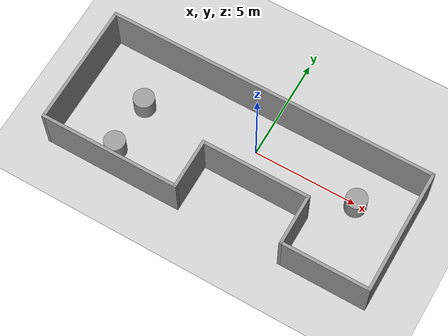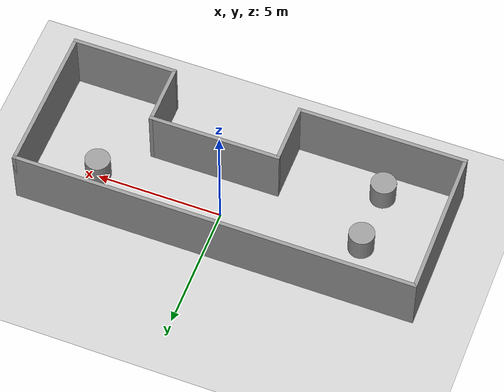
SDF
<sdf version="1.6">
 <world name="default">
  <light name="sun" type="directional">
   <pose>0 0 10 0 -0 0</pose>
   <diffuse>0.8 0.8 0.8 1</diffuse>
   <specular>0.1 0.1 0.1 1</specular>
   <attenuation>
    <range>1000</range>
    <constant>0.9</constant>
    <linear>0.01</linear>
    <quadratic>0.001</quadratic>
   </attenuation>
   <direction>-0.5 0.5 -1</direction>
  </light>
  <model name="ground_plane">
   <static>1</static>
   <link name="link">
    <collision name="collision">
     <geometry><plane><normal>0 0 1</normal><size>100 100</size></plane></geometry>
     <surface><friction><ode><mu>100</mu><mu2>50</mu2></ode></friction></surface>
    </collision>
    <visual name="visual">
     <cast_shadows>0</cast_shadows>
     <geometry><plane><normal>0 0 1</normal><size>100 100</size></plane></geometry>
     <material>
      <script><uri>file://media/materials/scripts/gazebo.material</uri><name>Gazebo/Grey</name></script>
     </material>
    </visual>
   </link>
  </model>
  <gravity>0 0 -9.8</gravity>
  <magnetic_field>6e-06 2.3e-05 -4.2e-05</magnetic_field>
  <atmosphere type="adiabatic"/>
  <physics name="default_physics" default="0" type="ode">
   <max_step_size>0.001</max_step_size>
   <real_time_factor>1</real_time_factor>
   <real_time_update_rate>1000</real_time_update_rate>
  </physics>
  <scene><ambient>0.4 0.4 0.4 1</ambient><background>0.7 0.7 0.7 1</background><shadows>1</shadows></scene>
  <spherical_coordinates>
   <surface_model>EARTH_WGS84</surface_model>
   <latitude_deg>0</latitude_deg>
   <longitude_deg>0</longitude_deg>
   <elevation>0</elevation>
   <heading_deg>0</heading_deg>
  </spherical_coordinates>
  <model name="test_world">
   <pose>-0.375142 -1.09239 0 0 -0 0</pose>
   <link name="Wall_11">
    <collision name="Wall_11_Collision">
     <geometry><box><size>6 0.15 2.5</size></box></geometry>
     <pose>0 0 1.25 0 -0 0</pose>
    </collision>
    <visual name="Wall_11_Visual">
     <pose>0 0 1.25 0 -0 0</pose>
     <geometry><box><size>6 0.15 2.5</size></box></geometry>
     <material>
      <script><uri>file://media/materials/scripts/gazebo.material</uri><name>Gazebo/Grey</name></script>
      <ambient>1 1 1 1</ambient>
     </material>
    </visual>
    <pose>7.9 0 0 0 0 -1.5708</pose>
   </link>
   <link name="Wall_12">
    <collision name="Wall_12_Collision">
     <geometry><box><size>4.25 0.15 2.5</size></box></geometry>
     <pose>0 0 1.25 0 -0 0</pose>
    </collision>
    <visual name="Wall_12_Visual">
     <pose>0 0 1.25 0 -0 0</pose>
     <geometry><box><size>4.25 0.15 2.5</size></box></geometry>
     <material>
      <script><uri>file://media/materials/scripts/gazebo.material</uri><name>Gazebo/Grey</name></script>
      <ambient>1 1 1 1</ambient>
     </material>
    </visual>
    <pose>5.85 -2.925 0 0 -0 3.14159</pose>
   </link>
   <link name="Wall_13">
    <collision name="Wall_13_Collision">
     <geometry><box><size>2.5 0.15 2.5</size></box></geometry>
     <pose>0 0 1.25 0 -0 0</pose>
    </collision>
    <visual name="Wall_13_Visual">
     <pose>0 0 1.25 0 -0 0</pose>
     <geometry><box><size>2.5 0.15 2.5</size></box></geometry>
     <material>
      <script><uri>file://media/materials/scripts/gazebo.material</uri><name>Gazebo/Grey</name></script>
      <ambient>1 1 1 1</ambient>
     </material>
    </visual>
    <pose>3.8 -1.75 0 0 -0 1.5708</pose>
   </link>
   <link name="Wall_14">
    <collision name="Wall_14_Collision">
     <geometry><box><size>5.25 0.15 2.5</size></box></geometry>
     <pose>0 0 1.25 0 -0 0</pose>
    </collision>
    <visual name="Wall_14_Visual">
     <pose>0 0 1.25 0 -0 0</pose>
     <geometry><box><size>5.25 0.15 2.5</size></box></geometry>
     <material>
      <script><uri>file://media/materials/scripts/gazebo.material</uri><name>Gazebo/Grey</name></script>
      <ambient>1 1 1 1</ambient>
     </material>
    </visual>
    <pose>1.25 -0.575 0 0 -0 3.14159</pose>
   </link>
   <link name="Wall_15">
    <collision name="Wall_15_Collision">
     <geometry><box><size>2.5 0.15 2.5</size></box></geometry>
     <pose>0 0 1.25 0 -0 0</pose>
    </collision>
    <visual name="Wall_15_Visual">
     <pose>0 0 1.25 0 -0 0</pose>
     <geometry><box><size>2.5 0.15 2.5</size></box></geometry>
     <material>
      <script><uri>file://media/materials/scripts/gazebo.material</uri><name>Gazebo/Grey</name></script>
      <ambient>1 1 1 1</ambient>
     </material>
    </visual>
    <pose>-1.3 -1.75 0 0 0 -1.5708</pose>
   </link>
   <link name="Wall_16">
    <collision name="Wall_16_Collision">
     <geometry><box><size>6.75 0.15 2.5</size></box></geometry>
     <pose>0 0 1.25 0 -0 0</pose>
    </collision>
    <visual name="Wall_16_Visual">
     <pose>0 0 1.25 0 -0 0</pose>
     <geometry><box><size>6.75 0.15 2.5</size></box></geometry>
     <material>
      <script><uri>file://media/materials/scripts/gazebo.material</uri><name>Gazebo/Grey</name></script>
      <ambient>1 1 1 1</ambient>
     </material>
    </visual>
    <pose>-4.6 -2.925 0 0 -0 3.14159</pose>
   </link>
   <link name="Wall_20">
    <collision name="Wall_20_Collision">
     <geometry><box><size>6 0.15 2.5</size></box></geometry>
     <pose>0 0 1.25 0 -0 0</pose>
    </collision>
    <visual name="Wall_20_Visual">
     <pose>0 0 1.25 0 -0 0</pose>
     <geometry><box><size>6 0.15 2.5</size></box></geometry>
     <material>
      <script><uri>file://media/materials/scripts/gazebo.material</uri><name>Gazebo/Grey</name></script>
      <ambient>1 1 1 1</ambient>
     </material>
    </visual>
    <pose>-7.9 0 0 0 -0 1.5708</pose>
   </link>
   <link name="Wall_21">
    <collision name="Wall_21_Collision">
     <geometry><box><size>15.95 0.15 2.5</size></box></geometry>
     <pose>0 0 1.25 0 -0 0</pose>
    </collision>
    <visual name="Wall_21_Visual">
     <pose>0 0 1.25 0 -0 0</pose>
     <geometry><box><size>15.95 0.15 2.5</size></box></geometry>
     <material>
      <script><uri>file://media/materials/scripts/gazebo.material</uri><name>Gazebo/Grey</name></script>
      <ambient>1 1 1 1</ambient>
     </material>
    </visual>
    <pose>0 2.925 0 0 -0 0</pose>
   </link>
   <static>1</static>
  </model>
  <model name="unit_cylinder_0">
   <pose>-5.46179 -0.538822 0.499997 3e-06 4e-06 -0</pose>
   <link name="link">
    <inertial>
     <mass>1</mass>
     <inertia><ixx>0.145833</ixx><ixy>0</ixy><ixz>0</ixz><iyy>0.145833</iyy><iyz>0</iyz><izz>0.125</izz></inertia>
    </inertial>
    <collision name="collision">
     <geometry><cylinder><radius>0.5</radius><length>1</length></cylinder></geometry>
    </collision>
    <visual name="visual">
     <geometry><cylinder><radius>0.5</radius><length>1</length></cylinder></geometry>
     <material>
      <script><name>Gazebo/Grey</name><uri>file://media/materials/scripts/gazebo.material</uri></script>
     </material>
    </visual>
   </link>
  </model>
  <model name="unit_cylinder_1">
   <pose>-5.48419 -2.97309 0.499993 -3e-06 -4e-06 -0</pose>
   <link name="link">
    <inertial>
     <mass>1</mass>
     <inertia><ixx>0.145833</ixx><ixy>0</ixy><ixz>0</ixz><iyy>0.145833</iyy><iyz>0</iyz><izz>0.125</izz></inertia>
    </inertial>
    <collision name="collision">
     <geometry><cylinder><radius>0.5</radius><length>1</length></cylinder></geometry>
    </collision>
    <visual name="visual">
     <geometry><cylinder><radius>0.5</radius><length>1</length></cylinder></geometry>
     <material>
      <script><name>Gazebo/Grey</name><uri>file://media/materials/scripts/gazebo.material</uri></script>
     </material>
    </visual>
   </link>
  </model>
  <model name="unit_cylinder_2">
   <pose>5.05107 -0.112331 0.499997 3e-06 4e-06 -0</pose>
   <link name="link">
    <inertial>
     <mass>1</mass>
     <inertia><ixx>0.145833</ixx><ixy>0</ixy><ixz>0</ixz><iyy>0.145833</iyy><iyz>0</iyz><izz>0.125</izz></inertia>
    </inertial>
    <collision name="collision">
     <geometry><cylinder><radius>0.5</radius><length>1</length></cylinder></geometry>
    </collision>
    <visual name="visual">
     <geometry><cylinder><radius>0.5</radius><length>1</length></cylinder></geometry>
     <material>
      <script><name>Gazebo/Grey</name><uri>file://media/materials/scripts/gazebo.material</uri></script>
     </material>
    </visual>
   </link>
  </model>
 </world>
</sdf>
